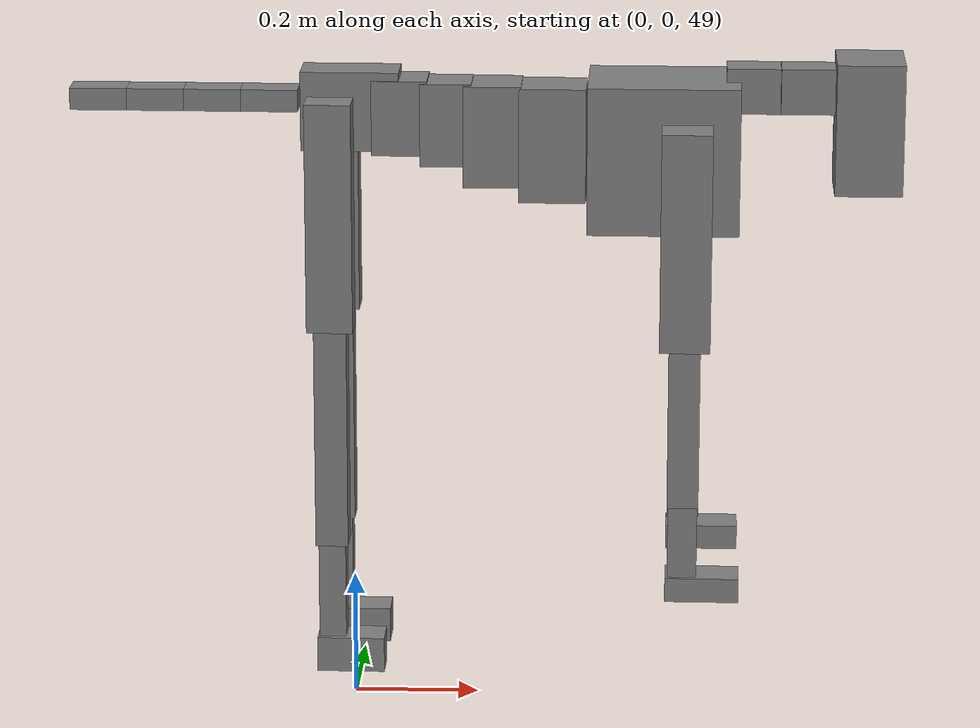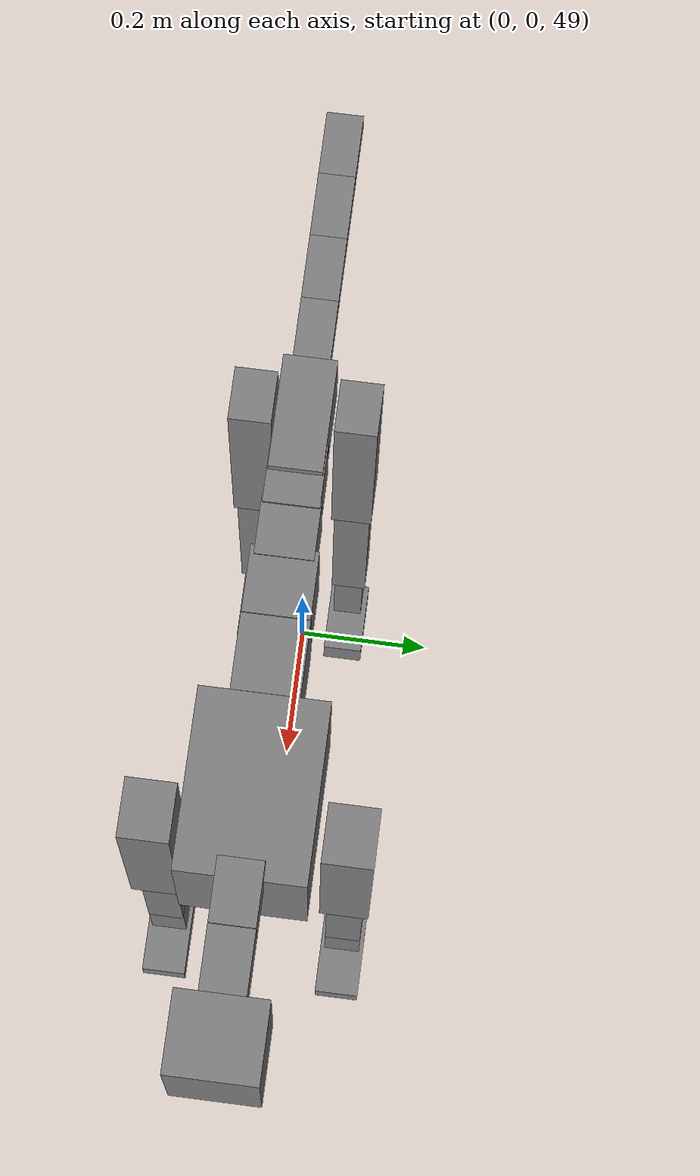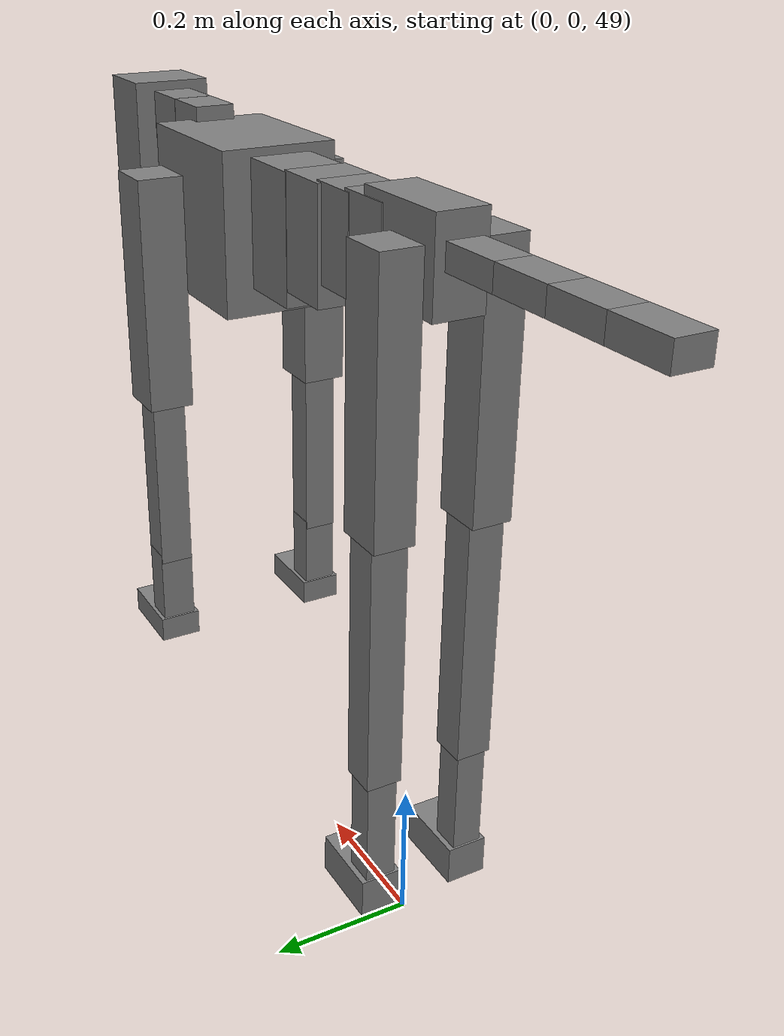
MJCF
<mujoco model="dog">

    <default>
        <joint armature="0.02" stiffness="1" damping="0.2" limited="true"/>
        <geom condim="3" friction="1 0.05 0.05" margin="0.01"/>
        <motor ctrllimited="true" ctrlrange="-1.0 1.0" forcelimited="true" gear="50"/>
    </default>

    <compiler inertiafromgeom="true" angle="radian"/>

    <option timestep="0.016" iterations="50" tolerance="1e-10" solver="Newton" jacobian="dense" cone="pyramidal"/>

    <size nconmax="20000" njmax="60000" nstack="5000000"/>
    <visual>
        <map force="0.1" zfar="30"/>
        <rgba haze="0.15 0.25 0.35 1"/>
        <quality shadowsize="2048"/>
        <global offwidth="800" offheight="800"/>
    </visual>

    <asset>
        <texture type="skybox" builtin="gradient" rgb1="0.3 0.5 0.7" rgb2="0 0 0" width="512" height="512"/>
        <texture name="texplane" type="2d" builtin="checker" rgb1=".2 .3 .4" rgb2=".1 0.15 0.2" width="512" height="512"
                 mark="cross" markrgb=".8 .8 .8"/>
        <texture name="texgeom" type="cube" builtin="flat" mark="cross" width="127" height="1278" rgb1="0.8 0.6 0.4"
                 rgb2="0.8 0.6 0.4" markrgb="1 1 1" random="0.01"/>

        <material name="matplane" reflectance="0.3" texture="texplane" texrepeat="1 1" texuniform="true"/>
        <material name="matgeom" texture="texgeom" texuniform="true" rgba="0.8 0.6 .4 1"/>
    </asset>

    <worldbody>
        <geom name="floor" pos="0 0 0" size="0 0 .25" type="plane" material="matplane" condim="3"/>

        <light directional="false" diffuse=".2 .2 .2" specular="0 0 0" pos="0 0 5" dir="0 0 -1" castshadow="false"/>
        <light mode="targetbodycom" target="torso" directional="false" diffuse=".8 .8 .8" specular="0.3 0.3 0.3"
               pos="0 0 4.0" dir="0 0 -1"/>

        <body name="root" pos="0 0 50">
            <freejoint name="root_1"/>
            <geom type="box" pos="0 0 -0.02" size="0.0774  0.0358  0.063" density="2030"/>

            <body name="spine1" pos="0.054 0 0">
                <joint name="spine1_y" axis="0 1 0" range="0 0.7" limited="true"/>
                <geom type="box" pos="0.02375 0 -0.03" size="0.04375  0.0375  0.05985" density="2030"/>

                <body name="spine2" pos="0.0612 0 0">
                    <joint name="spine2_y" axis="0 1 0" range="-0.15 0.15" limited="true"/>
                    <geom type="box" pos="0.03555  0  -0.04" size="0.04055  0.039  0.06615" density="2030"/>

                    <body name="spine3" pos="0.0730 0 0">
                        <joint name="spine3_y" axis="0 1 0" range="-0.15 0.15" limited="true"/>
                        <geom type="box" pos="0.03555  0  -0.057" size="0.04555  0.0445  0.081" density="2030"/>

                        <body name="spine4" pos="0.0780 0 0">
                            <joint name="spine4_y" axis="0 1 0" range="-0.15 0.15" limited="true"/>
                            <geom type="box" pos="0.05265  0  -0.07" size="0.05265  0.045  0.09135" density="2030"/>

                            <body name="torso" pos="0.1082 0 0">
                                <joint name="torso_y" axis="0 1 0" range="-0.15 0.15" limited="true"/>
                                <geom type="box" pos="0.11925  0  -0.085" size="0.11925  0.085  0.11745"
                                      density="2030"/>

                                <body name="neck1" pos="0.2160  0   0.0180">
                                    <joint name="neck1_y" axis="0 1 0" range="-1.2  -1" limited="true"/>
                                    <geom type="box" pos="0.0423  0  0" size="0.0423  0.03  0.036" density="2325"/>

                                    <body name="neck2" pos="0.0853  0  0">
                                        <joint name="neck2_y" axis="0 1 0" range="0.1  0" limited="true"/>
                                        <geom type="box" pos="0.0423  0  0" size="0.0423  0.03  0.036" density="2325"/>

                                        <body name="head" pos="0.0853  0  0">
                                            <joint name="head_y" axis="0 1 0" range="-0.3  -0.2" limited="true"/>
                                            <geom type="box" pos="0.0531  0  -0.055" size="0.0531  0.06  0.1044"
                                                  density="4030"/>

                                        </body>
                                    </body>
                                </body>

                                <body name="front_shoulder" pos="0.156  0   -0.0480">
                                    <joint name="front_shoulder_y" axis="0 1 0" range="-1 1.5" limited="true"/>
                                    <geom type="box" pos="0 0.13 -0.1477" size="0.0396  0.0338  0.1744" density="1158"/>
                                    <geom type="box" pos="0 -0.13 -0.1477" size="0.0396  0.0338  0.1744"
                                          density="1158"/>

                                    <body name="front_elbow" pos="0  0  -0.2954">
                                        <joint name="front_elbow_y" axis="0 1 0" range="-2 0" limited="true"/>
                                        <geom type="box" pos="0 0.13 -0.1483" size="0.0247  0.0253  0.1483"
                                              density="1081"/>
                                        <geom type="box" pos="0 -0.13 -0.1483" size="0.0247  0.0253  0.1483"
                                              density="1081"/>

                                        <body name="front_wrist" pos="0  0  -0.2965">
                                            <joint name="front_wrist_y" axis="0 1 0" range="-0.2 0" limited="true"/>
                                            <geom type="box" pos="0 0.13 -0.0584" size="0.0231  0.0257  0.0715"
                                                  density="1664"/>
                                            <geom type="box" pos="0 -0.13 -0.0584" size="0.0231  0.0257  0.0715"
                                                  density="1664"/>

                                            <body name="front_finger_end" pos="0  0  -0.1168">
                                                <joint name="front_finger_y" axis="0 1 0" range="-0.4 1"
                                                       limited="true"/>
                                                <geom type="box" pos="0.0317  0.13  -0.0046"
                                                      size="0.0582  0.0317  0.0196" density="1515"/>
                                                <geom type="box" pos="0.0317  -0.13  -0.0046"
                                                      size="0.0582  0.0317  0.0196" density="1515"/>

                                            </body>

                                        </body>
                                    </body>
                                </body>

                            </body>
                        </body>
                    </body>
                </body>
            </body>

            <body name="back_hip" pos="-0.03 0 -0.018">
                <joint name="back_hip_y" axis="0 1 0" range="-1.5 0.3" limited="true"/>
                <geom type="box" pos="0 0.07 -0.1615" size="0.0365  0.0286  0.1843" density="1154"/>
                <geom type="box" pos="0 -0.07 -0.1615" size="0.0365  0.0286  0.1843" density="1154"/>

                <body name="back_knee" pos="0  0  -0.3230">
                    <joint name="back_knee_y" axis="0 1 0" range="0 2.8" limited="true"/>
                    <geom type="box" pos="0 0.07 -0.1816" size="0.0259  0.0255  0.1972" density="1227"/>
                    <geom type="box" pos="0 -0.07 -0.1816" size="0.0259  0.0255  0.1972" density="1227"/>

                    <body name="back_ankle" pos="0  0  -0.3633">
                        <joint name="back_ankle_y" axis="0 1 0" range="-2.2 0" limited="true"/>
                        <geom type="box" pos="0 0.07 -0.0928" size="0.0215  0.0215  0.1041" density="1284"/>
                        <geom type="box" pos="0 -0.07 -0.0928" size="0.0215  0.0215  0.1041" density="1284"/>

                        <body name="back_toe_end" pos="0  0  -0.1856">
                            <joint name="back_toe_y" axis="0 1 0" range="-0.4 1" limited="true"/>
                            <geom type="box" pos="0.0294  0.07  -0.0134" size="0.0538  0.0294  0.0284" density="1515"/>
                            <geom type="box" pos="0.0294  -0.07  -0.0134" size="0.0538  0.0294  0.0284" density="1515"/>

                        </body>
                    </body>
                </body>
            </body>

            <body name="tail1" pos="-0.074 0 -0.006">
                <joint name="tail1_y" axis="0 1 0" range="-0.2 0.2" limited="true"/>
                <geom type="box" pos="-0.0536  0  0" size="0.045  0.025  0.0175" density="1587"/>

                <body name="tail2" pos="-0.09 0 0">
                    <joint name="tail2_y" axis="0 1 0" range="-0.2 0.2" limited="true"/>
                    <geom type="box" pos="-0.0536  0  0" size="0.045  0.025  0.0175" density="1587"/>

                    <body name="tail3" pos="-0.09 0 0">
                        <joint name="tail3_y" axis="0 1 0" range="-0.2 0.2" limited="true"/>
                        <geom type="box" pos="-0.0536  0  0" size="0.045  0.025  0.0175" density="1587"/>

                        <body name="tail4" pos="-0.09 0 0">
                            <joint name="tail4_y" axis="0 1 0" range="-0.2 0.2" limited="true"/>
                            <geom type="box" pos="-0.0536  0  0" size="0.045  0.025  0.0175" density="1587"/>

                        </body>
                    </body>
                </body>
            </body>
        </body>
    </worldbody>

    <actuator>
        <motor joint="spine1_y" forcerange="-150 150     "/>
        <motor joint="spine2_y" forcerange="-150 150     "/>
        <motor joint="spine3_y" forcerange="-150 150     "/>
        <motor joint="spine4_y" forcerange="-150 150     "/>
        <motor joint="torso_y" forcerange="-150 150     "/>
        <motor joint="neck1_y" forcerange="-100 100       "/>
        <motor joint="neck2_y" forcerange="-100 100       "/>
        <motor joint="head_y" forcerange="-150 150       "/>
        <motor joint="front_shoulder_y" forcerange="-149.54 176.05"/>
        <motor joint="front_elbow_y" forcerange="-143.36 140.44"/>
        <motor joint="front_wrist_y" forcerange="-103.72 101.92"/>
        <motor joint="front_finger_y" forcerange="-65.94 63.25"/>
        <motor joint="back_hip_y" forcerange="-286.06 295.56"/>
        <motor joint="back_knee_y" forcerange="-281.71 289.62"/>
        <motor joint="back_angle_y" forcerange="-75.77 168.66"/>
        <motor joint="back_toe_y" forcerange="-126.63 28.31"/>
        <motor joint="tail1_y" forcerange="-50 50     "/>
        <motor joint="tail2_y" forcerange="-50 50     "/>
        <motor joint="tail3_y" forcerange="-50 50     "/>
        <motor joint="tail4_y" forcerange="-50 50     "/>
    </actuator>
</mujoco>
